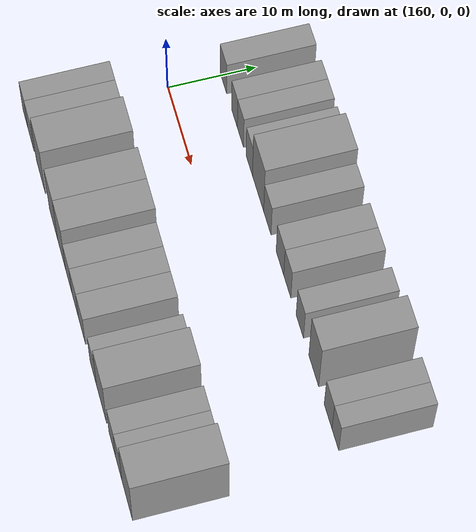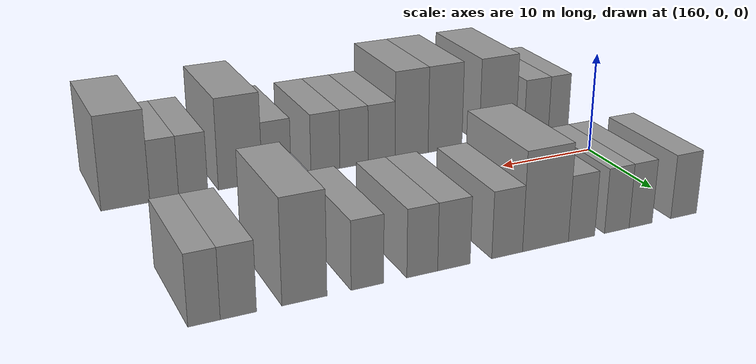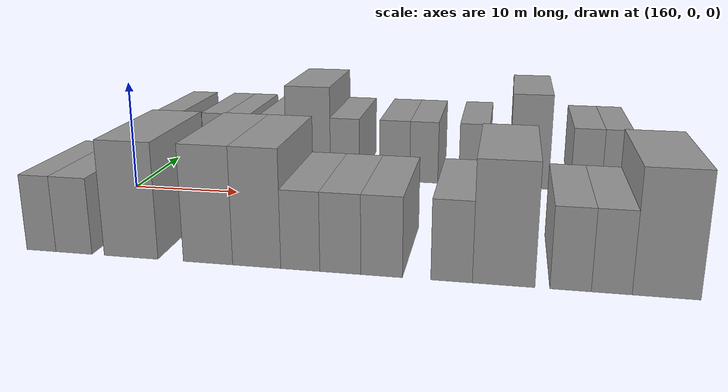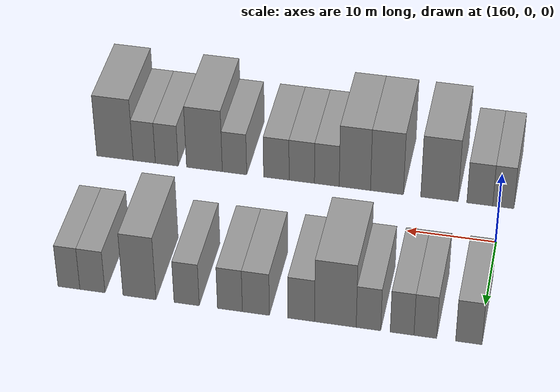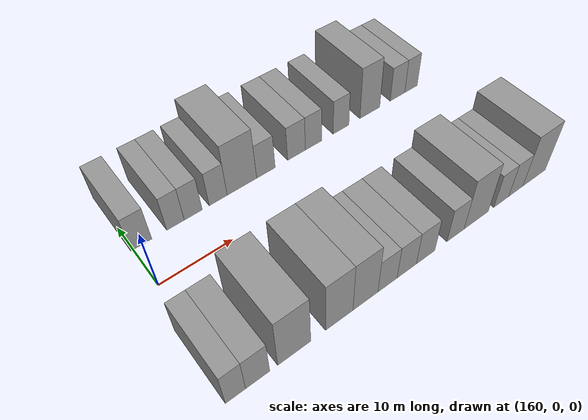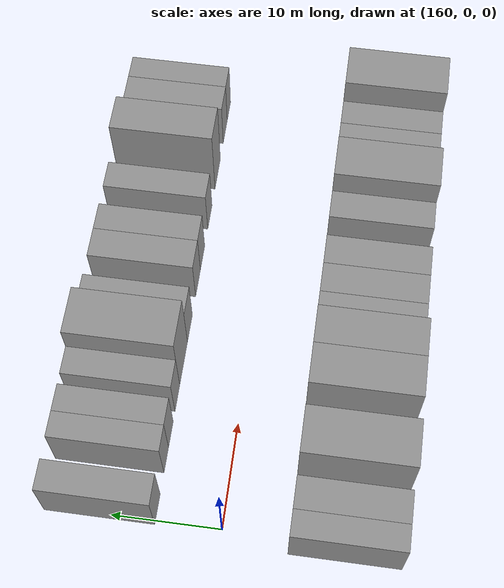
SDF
<sdf version="1.6">
 <world name="default">
  <model name="building_39">
   <static>1</static>
   <pose>161.0663 11.0000 0 0.000000 0.000000 1.570796</pose>
   <link name="link">
    <pose>0 0 3.00 0 0 0</pose>
    <collision name="collision"><geometry><box><size>10.0000 2.7846 6.0000</size></box></geometry></collision>
    <visual name="visual">
     <cast_shadows>0</cast_shadows>
     <geometry><box><size>10.0000 2.7846 6.0000</size></box></geometry>
     <material>
      <script>
       <uri>model://grey_wall/materials/scripts</uri>
       <uri>model://grey_wall/materials/textures</uri>
       <name>vrc/grey_wall</name>
      </script>
     </material>
    </visual>
   </link>
  </model>
  <model name="building_40">
   <static>1</static>
   <pose>165.6680 11.0000 0 0.000000 0.000000 1.570796</pose>
   <link name="link">
    <pose>0 0 3.00 0 0 0</pose>
    <collision name="collision"><geometry><box><size>10.0000 2.4186 6.0000</size></box></geometry></collision>
    <visual name="visual">
     <cast_shadows>0</cast_shadows>
     <geometry><box><size>10.0000 2.4186 6.0000</size></box></geometry>
     <material>
      <script>
       <uri>model://grey_wall/materials/scripts</uri>
       <uri>model://grey_wall/materials/textures</uri>
       <name>vrc/grey_wall</name>
      </script>
     </material>
    </visual>
   </link>
  </model>
  <model name="building_41">
   <static>1</static>
   <pose>168.1445 11.0000 0 0.000000 0.000000 1.570796</pose>
   <link name="link">
    <pose>0 0 3.00 0 0 0</pose>
    <collision name="collision"><geometry><box><size>10.0000 2.5344 6.0000</size></box></geometry></collision>
    <visual name="visual">
     <cast_shadows>0</cast_shadows>
     <geometry><box><size>10.0000 2.5344 6.0000</size></box></geometry>
     <material>
      <script>
       <uri>model://grey_wall/materials/scripts</uri>
       <uri>model://grey_wall/materials/textures</uri>
       <name>vrc/grey_wall</name>
      </script>
     </material>
    </visual>
   </link>
  </model>
  <model name="building_42">
   <static>1</static>
   <pose>171.7299 11.0000 0 0.000000 0.000000 1.570796</pose>
   <link name="link">
    <pose>0 0 3.00 0 0 0</pose>
    <collision name="collision"><geometry><box><size>10.0000 2.6363 6.0000</size></box></geometry></collision>
    <visual name="visual">
     <cast_shadows>0</cast_shadows>
     <geometry><box><size>10.0000 2.6363 6.0000</size></box></geometry>
     <material>
      <script>
       <uri>model://grey_wall/materials/scripts</uri>
       <uri>model://grey_wall/materials/textures</uri>
       <name>vrc/grey_wall</name>
      </script>
     </material>
    </visual>
   </link>
  </model>
  <model name="building_43">
   <static>1</static>
   <pose>175.2818 11.0000 0 0.000000 0.000000 1.570796</pose>
   <link name="link">
    <pose>0 0 4.50 0 0 0</pose>
    <collision name="collision"><geometry><box><size>10.0000 4.4676 9.0000</size></box></geometry></collision>
    <visual name="visual">
     <cast_shadows>0</cast_shadows>
     <geometry><box><size>10.0000 4.4676 9.0000</size></box></geometry>
     <material>
      <script>
       <uri>model://grey_wall/materials/scripts</uri>
       <uri>model://grey_wall/materials/textures</uri>
       <name>vrc/grey_wall</name>
      </script>
     </material>
    </visual>
   </link>
  </model>
  <model name="building_44">
   <static>1</static>
   <pose>178.9684 11.0000 0 0.000000 0.000000 1.570796</pose>
   <link name="link">
    <pose>0 0 3.00 0 0 0</pose>
    <collision name="collision"><geometry><box><size>10.0000 2.9055 6.0000</size></box></geometry></collision>
    <visual name="visual">
     <cast_shadows>0</cast_shadows>
     <geometry><box><size>10.0000 2.9055 6.0000</size></box></geometry>
     <material>
      <script>
       <uri>model://grey_wall/materials/scripts</uri>
       <uri>model://grey_wall/materials/textures</uri>
       <name>vrc/grey_wall</name>
      </script>
     </material>
    </visual>
   </link>
  </model>
  <model name="building_45">
   <static>1</static>
   <pose>183.8942 11.0000 0 0.000000 0.000000 1.570796</pose>
   <link name="link">
    <pose>0 0 3.00 0 0 0</pose>
    <collision name="collision"><geometry><box><size>10.0000 2.9461 6.0000</size></box></geometry></collision>
    <visual name="visual">
     <cast_shadows>0</cast_shadows>
     <geometry><box><size>10.0000 2.9461 6.0000</size></box></geometry>
     <material>
      <script>
       <uri>model://grey_wall/materials/scripts</uri>
       <uri>model://grey_wall/materials/textures</uri>
       <name>vrc/grey_wall</name>
      </script>
     </material>
    </visual>
   </link>
  </model>
  <model name="building_46">
   <static>1</static>
   <pose>186.7300 11.0000 0 0.000000 0.000000 1.570796</pose>
   <link name="link">
    <pose>0 0 3.00 0 0 0</pose>
    <collision name="collision"><geometry><box><size>10.0000 2.7256 6.0000</size></box></geometry></collision>
    <visual name="visual">
     <cast_shadows>0</cast_shadows>
     <geometry><box><size>10.0000 2.7256 6.0000</size></box></geometry>
     <material>
      <script>
       <uri>model://grey_wall/materials/scripts</uri>
       <uri>model://grey_wall/materials/textures</uri>
       <name>vrc/grey_wall</name>
      </script>
     </material>
    </visual>
   </link>
  </model>
  <model name="building_47">
   <static>1</static>
   <pose>191.4813 11.0000 0 0.000000 0.000000 1.570796</pose>
   <link name="link">
    <pose>0 0 3.00 0 0 0</pose>
    <collision name="collision"><geometry><box><size>10.0000 2.7770 6.0000</size></box></geometry></collision>
    <visual name="visual">
     <cast_shadows>0</cast_shadows>
     <geometry><box><size>10.0000 2.7770 6.0000</size></box></geometry>
     <material>
      <script>
       <uri>model://grey_wall/materials/scripts</uri>
       <uri>model://grey_wall/materials/textures</uri>
       <name>vrc/grey_wall</name>
      </script>
     </material>
    </visual>
   </link>
  </model>
  <model name="building_48">
   <static>1</static>
   <pose>196.7020 11.0000 0 0.000000 0.000000 1.570796</pose>
   <link name="link">
    <pose>0 0 4.50 0 0 0</pose>
    <collision name="collision"><geometry><box><size>10.0000 3.6644 9.0000</size></box></geometry></collision>
    <visual name="visual">
     <cast_shadows>0</cast_shadows>
     <geometry><box><size>10.0000 3.6644 9.0000</size></box></geometry>
     <material>
      <script>
       <uri>model://grey_wall/materials/scripts</uri>
       <uri>model://grey_wall/materials/textures</uri>
       <name>vrc/grey_wall</name>
      </script>
     </material>
    </visual>
   </link>
  </model>
  <model name="building_49">
   <static>1</static>
   <pose>201.9401 11.0000 0 0.000000 0.000000 1.570796</pose>
   <link name="link">
    <pose>0 0 3.00 0 0 0</pose>
    <collision name="collision"><geometry><box><size>10.0000 2.8118 6.0000</size></box></geometry></collision>
    <visual name="visual">
     <cast_shadows>0</cast_shadows>
     <geometry><box><size>10.0000 2.8118 6.0000</size></box></geometry>
     <material>
      <script>
       <uri>model://grey_wall/materials/scripts</uri>
       <uri>model://grey_wall/materials/textures</uri>
       <name>vrc/grey_wall</name>
      </script>
     </material>
    </visual>
   </link>
  </model>
  <model name="building_50">
   <static>1</static>
   <pose>204.5741 11.0000 0 0.000000 0.000000 1.570796</pose>
   <link name="link">
    <pose>0 0 3.00 0 0 0</pose>
    <collision name="collision"><geometry><box><size>10.0000 2.4562 6.0000</size></box></geometry></collision>
    <visual name="visual">
     <cast_shadows>0</cast_shadows>
     <geometry><box><size>10.0000 2.4562 6.0000</size></box></geometry>
     <material>
      <script>
       <uri>model://grey_wall/materials/scripts</uri>
       <uri>model://grey_wall/materials/textures</uri>
       <name>vrc/grey_wall</name>
      </script>
     </material>
    </visual>
   </link>
  </model>
  <model name="building_87">
   <static>1</static>
   <pose>159.8494 -11.0000 0 0.000000 0.000000 1.570796</pose>
   <link name="link">
    <pose>0 0 3.00 0 0 0</pose>
    <collision name="collision"><geometry><box><size>10.0000 2.4166 6.0000</size></box></geometry></collision>
    <visual name="visual">
     <cast_shadows>0</cast_shadows>
     <geometry><box><size>10.0000 2.4166 6.0000</size></box></geometry>
     <material>
      <script>
       <uri>model://grey_wall/materials/scripts</uri>
       <uri>model://grey_wall/materials/textures</uri>
       <name>vrc/grey_wall</name>
      </script>
     </material>
    </visual>
   </link>
  </model>
  <model name="building_88">
   <static>1</static>
   <pose>162.5369 -11.0000 0 0.000000 0.000000 1.570796</pose>
   <link name="link">
    <pose>0 0 3.00 0 0 0</pose>
    <collision name="collision"><geometry><box><size>10.0000 2.9583 6.0000</size></box></geometry></collision>
    <visual name="visual">
     <cast_shadows>0</cast_shadows>
     <geometry><box><size>10.0000 2.9583 6.0000</size></box></geometry>
     <material>
      <script>
       <uri>model://grey_wall/materials/scripts</uri>
       <uri>model://grey_wall/materials/textures</uri>
       <name>vrc/grey_wall</name>
      </script>
     </material>
    </visual>
   </link>
  </model>
  <model name="building_89">
   <static>1</static>
   <pose>167.1650 -11.0000 0 0.000000 0.000000 1.570796</pose>
   <link name="link">
    <pose>0 0 4.50 0 0 0</pose>
    <collision name="collision"><geometry><box><size>10.0000 4.2980 9.0000</size></box></geometry></collision>
    <visual name="visual">
     <cast_shadows>0</cast_shadows>
     <geometry><box><size>10.0000 4.2980 9.0000</size></box></geometry>
     <material>
      <script>
       <uri>model://grey_wall/materials/scripts</uri>
       <uri>model://grey_wall/materials/textures</uri>
       <name>vrc/grey_wall</name>
      </script>
     </material>
    </visual>
   </link>
  </model>
  <model name="building_90">
   <static>1</static>
   <pose>173.2206 -11.0000 0 0.000000 0.000000 1.570796</pose>
   <link name="link">
    <pose>0 0 4.50 0 0 0</pose>
    <collision name="collision"><geometry><box><size>10.0000 3.8132 9.0000</size></box></geometry></collision>
    <visual name="visual">
     <cast_shadows>0</cast_shadows>
     <geometry><box><size>10.0000 3.8132 9.0000</size></box></geometry>
     <material>
      <script>
       <uri>model://grey_wall/materials/scripts</uri>
       <uri>model://grey_wall/materials/textures</uri>
       <name>vrc/grey_wall</name>
      </script>
     </material>
    </visual>
   </link>
  </model>
  <model name="building_91">
   <static>1</static>
   <pose>176.9482 -11.0000 0 0.000000 0.000000 1.570796</pose>
   <link name="link">
    <pose>0 0 4.50 0 0 0</pose>
    <collision name="collision"><geometry><box><size>10.0000 3.6418 9.0000</size></box></geometry></collision>
    <visual name="visual">
     <cast_shadows>0</cast_shadows>
     <geometry><box><size>10.0000 3.6418 9.0000</size></box></geometry>
     <material>
      <script>
       <uri>model://grey_wall/materials/scripts</uri>
       <uri>model://grey_wall/materials/textures</uri>
       <name>vrc/grey_wall</name>
      </script>
     </material>
    </visual>
   </link>
  </model>
  <model name="building_92">
   <static>1</static>
   <pose>180.2183 -11.0000 0 0.000000 0.000000 1.570796</pose>
   <link name="link">
    <pose>0 0 3.00 0 0 0</pose>
    <collision name="collision"><geometry><box><size>10.0000 2.8985 6.0000</size></box></geometry></collision>
    <visual name="visual">
     <cast_shadows>0</cast_shadows>
     <geometry><box><size>10.0000 2.8985 6.0000</size></box></geometry>
     <material>
      <script>
       <uri>model://grey_wall/materials/scripts</uri>
       <uri>model://grey_wall/materials/textures</uri>
       <name>vrc/grey_wall</name>
      </script>
     </material>
    </visual>
   </link>
  </model>
  <model name="building_93">
   <static>1</static>
   <pose>183.1563 -11.0000 0 0.000000 0.000000 1.570796</pose>
   <link name="link">
    <pose>0 0 3.00 0 0 0</pose>
    <collision name="collision"><geometry><box><size>10.0000 2.9775 6.0000</size></box></geometry></collision>
    <visual name="visual">
     <cast_shadows>0</cast_shadows>
     <geometry><box><size>10.0000 2.9775 6.0000</size></box></geometry>
     <material>
      <script>
       <uri>model://grey_wall/materials/scripts</uri>
       <uri>model://grey_wall/materials/textures</uri>
       <name>vrc/grey_wall</name>
      </script>
     </material>
    </visual>
   </link>
  </model>
  <model name="building_94">
   <static>1</static>
   <pose>186.1442 -11.0000 0 0.000000 0.000000 1.570796</pose>
   <link name="link">
    <pose>0 0 3.00 0 0 0</pose>
    <collision name="collision"><geometry><box><size>10.0000 2.9982 6.0000</size></box></geometry></collision>
    <visual name="visual">
     <cast_shadows>0</cast_shadows>
     <geometry><box><size>10.0000 2.9982 6.0000</size></box></geometry>
     <material>
      <script>
       <uri>model://grey_wall/materials/scripts</uri>
       <uri>model://grey_wall/materials/textures</uri>
       <name>vrc/grey_wall</name>
      </script>
     </material>
    </visual>
   </link>
  </model>
  <model name="building_95">
   <static>1</static>
   <pose>191.0923 -11.0000 0 0.000000 0.000000 1.570796</pose>
   <link name="link">
    <pose>0 0 3.00 0 0 0</pose>
    <collision name="collision"><geometry><box><size>10.0000 2.8981 6.0000</size></box></geometry></collision>
    <visual name="visual">
     <cast_shadows>0</cast_shadows>
     <geometry><box><size>10.0000 2.8981 6.0000</size></box></geometry>
     <material>
      <script>
       <uri>model://grey_wall/materials/scripts</uri>
       <uri>model://grey_wall/materials/textures</uri>
       <name>vrc/grey_wall</name>
      </script>
     </material>
    </visual>
   </link>
  </model>
  <model name="building_96">
   <static>1</static>
   <pose>194.6716 -11.0000 0 0.000000 0.000000 1.570796</pose>
   <link name="link">
    <pose>0 0 4.50 0 0 0</pose>
    <collision name="collision"><geometry><box><size>10.0000 4.2605 9.0000</size></box></geometry></collision>
    <visual name="visual">
     <cast_shadows>0</cast_shadows>
     <geometry><box><size>10.0000 4.2605 9.0000</size></box></geometry>
     <material>
      <script>
       <uri>model://grey_wall/materials/scripts</uri>
       <uri>model://grey_wall/materials/textures</uri>
       <name>vrc/grey_wall</name>
      </script>
     </material>
    </visual>
   </link>
  </model>
  <model name="building_97">
   <static>1</static>
   <pose>199.1739 -11.0000 0 0.000000 0.000000 1.570796</pose>
   <link name="link">
    <pose>0 0 3.00 0 0 0</pose>
    <collision name="collision"><geometry><box><size>10.0000 2.7441 6.0000</size></box></geometry></collision>
    <visual name="visual">
     <cast_shadows>0</cast_shadows>
     <geometry><box><size>10.0000 2.7441 6.0000</size></box></geometry>
     <material>
      <script>
       <uri>model://grey_wall/materials/scripts</uri>
       <uri>model://grey_wall/materials/textures</uri>
       <name>vrc/grey_wall</name>
      </script>
     </material>
    </visual>
   </link>
  </model>
  <model name="building_98">
   <static>1</static>
   <pose>201.8779 -11.0000 0 0.000000 0.000000 1.570796</pose>
   <link name="link">
    <pose>0 0 3.00 0 0 0</pose>
    <collision name="collision"><geometry><box><size>10.0000 2.6640 6.0000</size></box></geometry></collision>
    <visual name="visual">
     <cast_shadows>0</cast_shadows>
     <geometry><box><size>10.0000 2.6640 6.0000</size></box></geometry>
     <material>
      <script>
       <uri>model://grey_wall/materials/scripts</uri>
       <uri>model://grey_wall/materials/textures</uri>
       <name>vrc/grey_wall</name>
      </script>
     </material>
    </visual>
   </link>
  </model>
  <model name="building_99">
   <static>1</static>
   <pose>205.4075 -11.0000 0 0.000000 0.000000 1.570796</pose>
   <link name="link">
    <pose>0 0 4.50 0 0 0</pose>
    <collision name="collision"><geometry><box><size>10.0000 4.3953 9.0000</size></box></geometry></collision>
    <visual name="visual">
     <cast_shadows>0</cast_shadows>
     <geometry><box><size>10.0000 4.3953 9.0000</size></box></geometry>
     <material>
      <script>
       <uri>model://grey_wall/materials/scripts</uri>
       <uri>model://grey_wall/materials/textures</uri>
       <name>vrc/grey_wall</name>
      </script>
     </material>
    </visual>
   </link>
  </model>
 </world>
</sdf>
